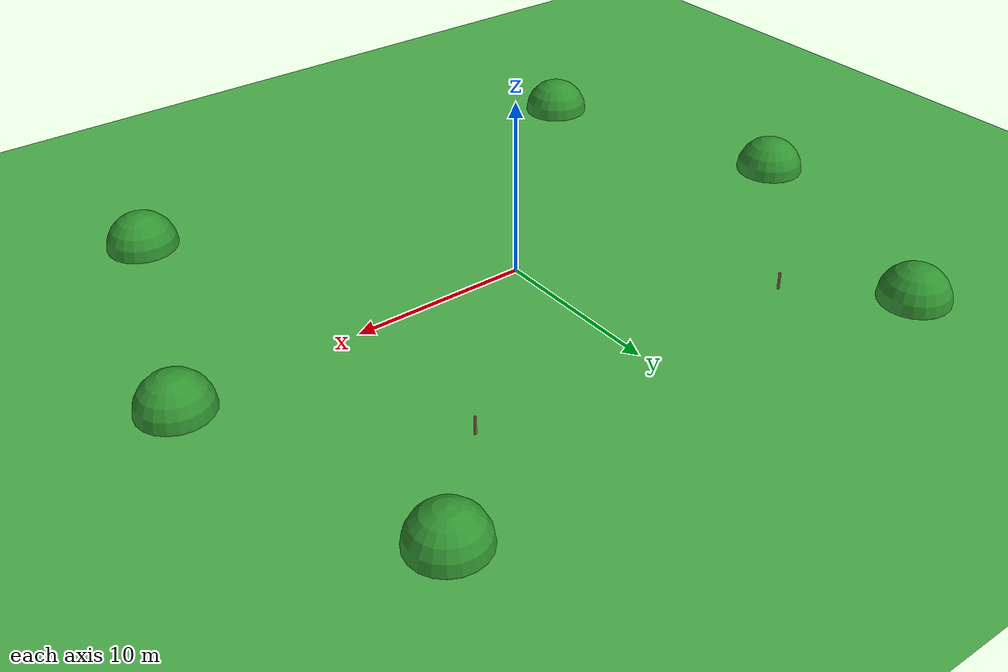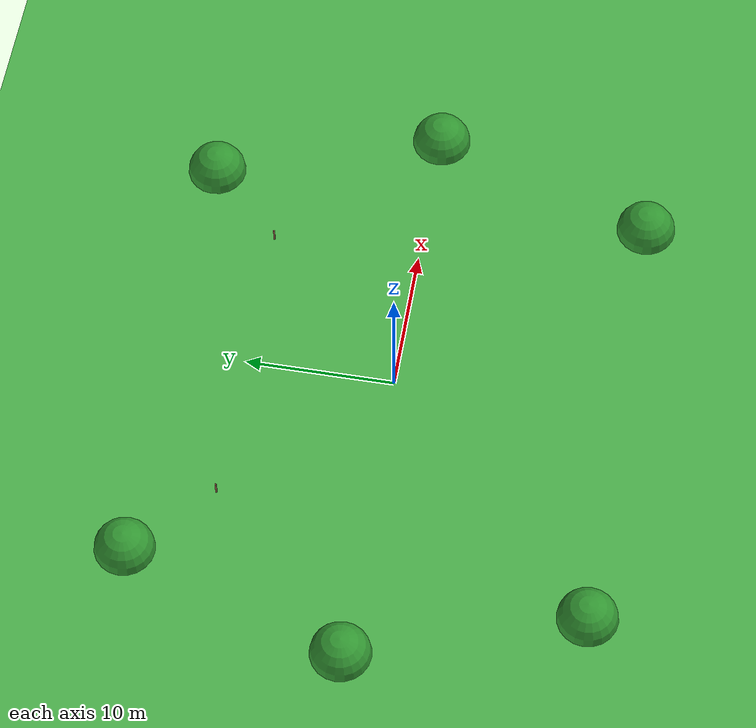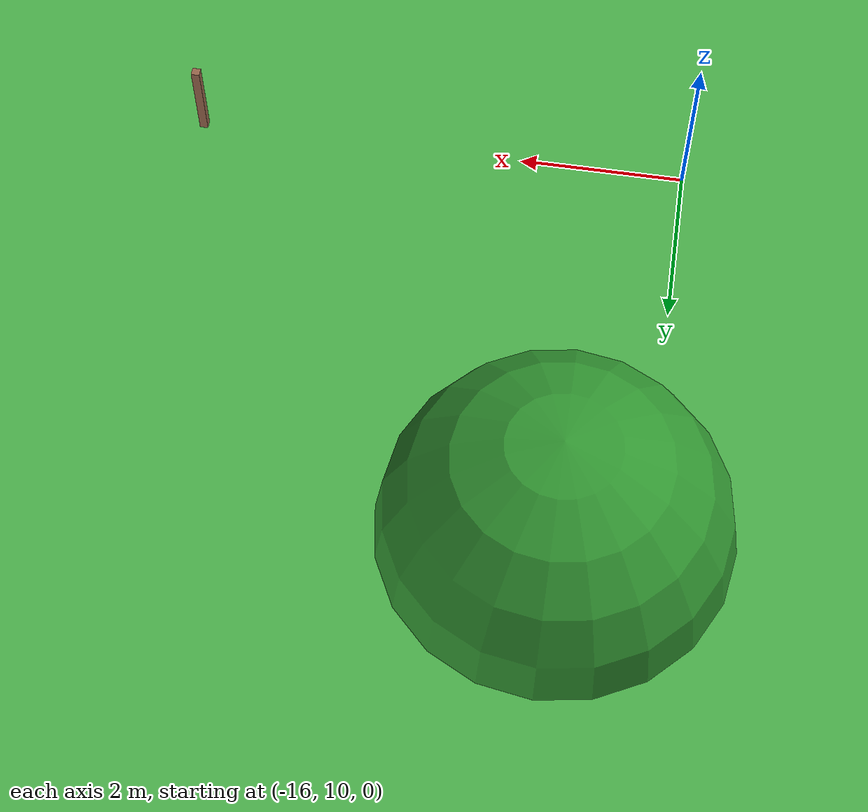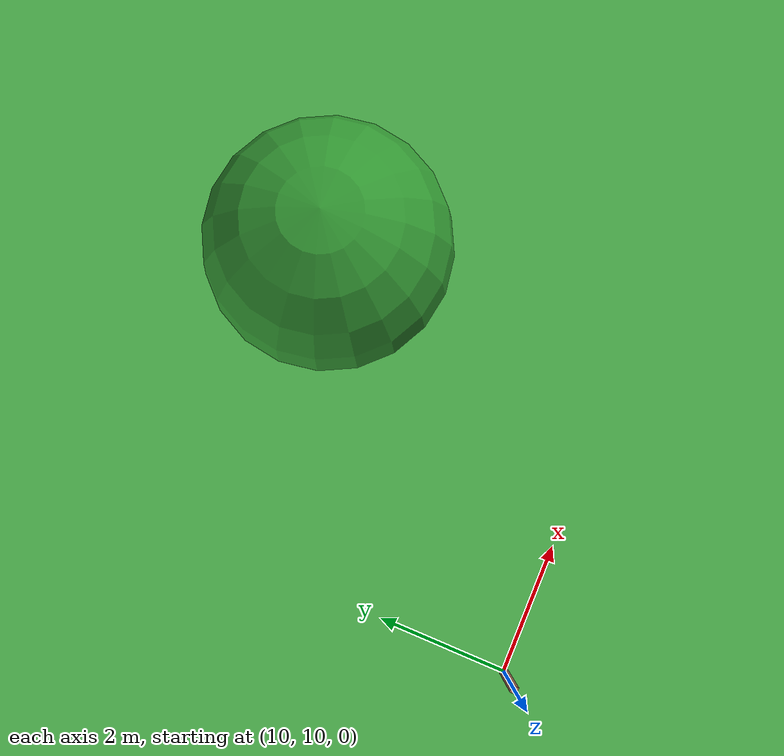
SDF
<sdf version="1.9">
 <world name="farm_world">
  <light type="directional" name="sun">
   <pose>0 0 10 0 0 0</pose>
   <diffuse>1.0 1.0 0.95 1</diffuse>
   <specular>0.4 0.4 0.4 1</specular>
   <attenuation>
    <range>1000</range>
    <constant>0.9</constant>
    <linear>0.01</linear>
    <quadratic>0.001</quadratic>
   </attenuation>
   <direction>-0.5 0.1 -0.9</direction>
  </light>
  <light type="directional" name="ambient">
   <cast_shadows>false</cast_shadows>
   <pose>0 0 5 0 0 0</pose>
   <diffuse>0.5 0.5 0.5 1</diffuse>
   <specular>0.1 0.1 0.1 1</specular>
   <direction>0 0 -1</direction>
  </light>
  <model name="ground_plane">
   <static>true</static>
   <link name="link">
    <collision name="collision">
     <geometry><plane><normal>0 0 1</normal><size>100 100</size></plane></geometry>
    </collision>
    <visual name="visual">
     <geometry><plane><normal>0 0 1</normal><size>100 100</size></plane></geometry>
     <material>
      <ambient>0.2 0.6 0.2 1</ambient>
      <diffuse>0.3 0.7 0.3 1</diffuse>
      <specular>0.1 0.1 0.1 1</specular>
     </material>
    </visual>
   </link>
  </model>
  <gravity>0 0 -9.8066</gravity>
  <physics name="default_physics" default="0" type="ode">
   <ode>
    <solver><type>quick</type><iters>10</iters><sor>1.3</sor></solver>
    <constraints>
     <cfm>0.00001</cfm>
     <erp>0.2</erp>
     <contact_max_correcting_vel>100</contact_max_correcting_vel>
     <contact_surface_layer>0.001</contact_surface_layer>
    </constraints>
   </ode>
   <max_step_size>0.004</max_step_size>
   <real_time_factor>1</real_time_factor>
   <real_time_update_rate>250</real_time_update_rate>
  </physics>
  <scene><ambient>0.8 0.8 0.8 1</ambient><background>0.7 0.9 1.0 1</background><shadows>true</shadows></scene>
  <model name="fence_post_1">
   <pose>10 10 0.5 0 0 0</pose>
   <static>true</static>
   <link name="link">
    <collision name="collision"><geometry><box><size>0.1 0.1 1.0</size></box></geometry></collision>
    <visual name="visual">
     <geometry><box><size>0.1 0.1 1.0</size></box></geometry>
     <material><ambient>0.4 0.3 0.2 1</ambient><diffuse>0.6 0.4 0.3 1</diffuse></material>
    </visual>
   </link>
  </model>
  <model name="fence_post_2">
   <pose>-10 10 0.5 0 0 0</pose>
   <static>true</static>
   <link name="link">
    <collision name="collision"><geometry><box><size>0.1 0.1 1.0</size></box></geometry></collision>
    <visual name="visual">
     <geometry><box><size>0.1 0.1 1.0</size></box></geometry>
     <material><ambient>0.4 0.3 0.2 1</ambient><diffuse>0.6 0.4 0.3 1</diffuse></material>
    </visual>
   </link>
  </model>
  <include><uri>model://big_tree</uri><name>tree_1</name><pose>15 15 0 0 0 0</pose></include>
  <include><uri>model://big_tree</uri><name>tree_2</name><pose>-15 15 0 0 0 0</pose></include>
  <include><uri>model://big_tree</uri><name>tree_3</name><pose>15 -15 0 0 0 0</pose></include>
  <include><uri>model://big_tree</uri><name>tree_4</name><pose>-15 -15 0 0 0 0</pose></include>
  <include><uri>model://big_tree</uri><name>tree_5</name><pose>20 0 0 0 0 0</pose></include>
  <include><uri>model://big_tree</uri><name>tree_6</name><pose>-20 0 0 0 0 0</pose></include>
 </world>
</sdf>

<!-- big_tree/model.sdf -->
<sdf version="1.9">
  <model name="big_tree">
    <static>true</static>
    <link name="trunk">
      <collision name="collision">
        <geometry>
          <cylinder>
            <radius>0.3</radius>
            <length>3.0</length>
          </cylinder>
        </geometry>
      </collision>
      <visual name="visual">
        <geometry>
          <cylinder>
            <radius>0.3</radius>
            <length>3.0</length>
          </cylinder>
        </geometry>
        <material>
          <ambient>0.4 0.3 0.2 1</ambient>
          <diffuse>0.5 0.35 0.25 1</diffuse>
          <specular>0.1 0.1 0.1 1</specular>
        </material>
      </visual>
    </link>
    <link name="foliage">
      <collision name="collision">
        <geometry>
          <sphere>
            <radius>2.0</radius>
          </sphere>
        </geometry>
      </collision>
      <visual name="visual">
        <geometry>
          <sphere>
            <radius>2.0</radius>
          </sphere>
        </geometry>
        <material>
          <ambient>0.1 0.4 0.1 1</ambient>
          <diffuse>0.2 0.6 0.2 1</diffuse>
          <specular>0.1 0.1 0.1 1</specular>
        </material>
      </visual>
    </link>
    <joint name="foliage_joint" type="fixed">
      <parent>trunk</parent>
      <child>foliage</child>
      <pose>0 0 2.5 0 0 0</pose>
    </joint>
  </model>
</sdf>
